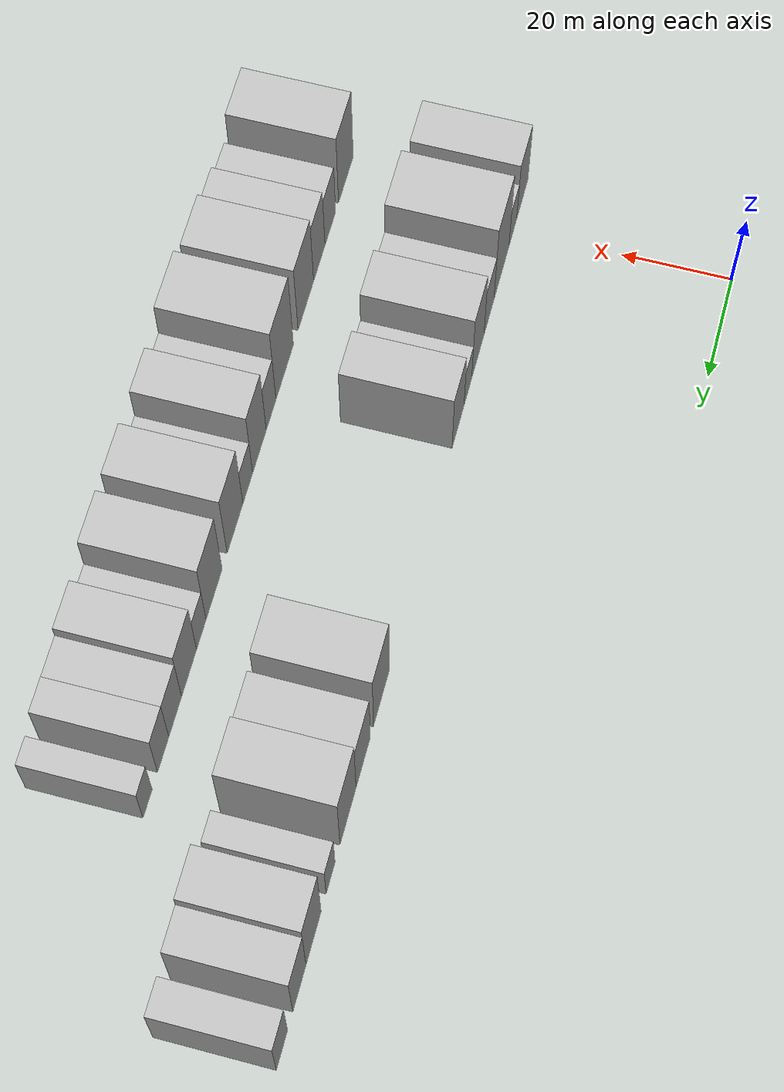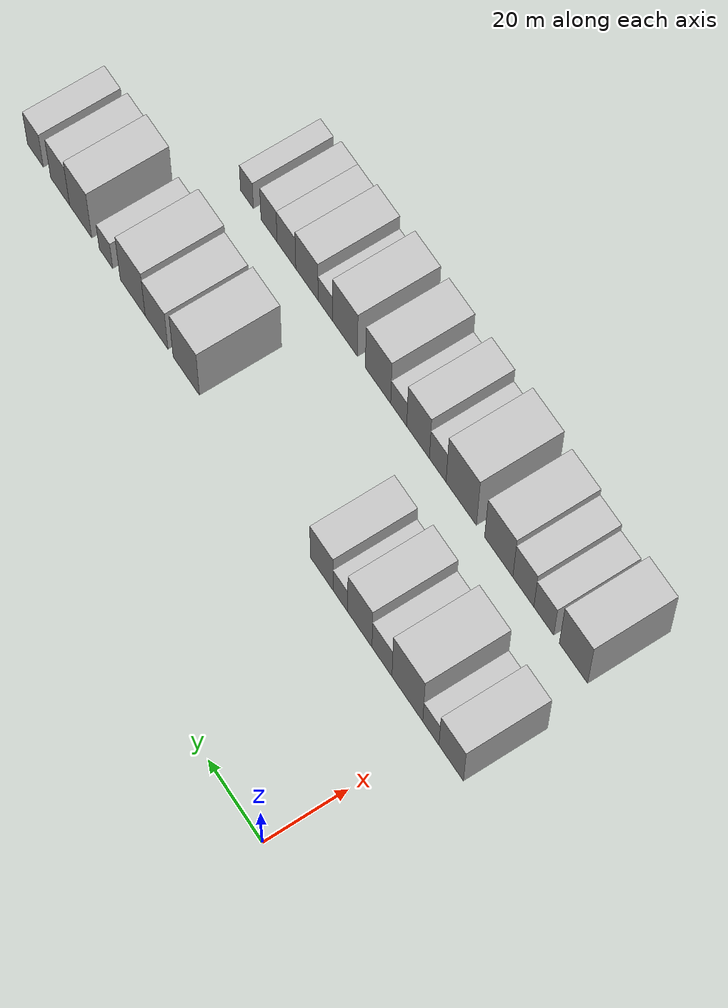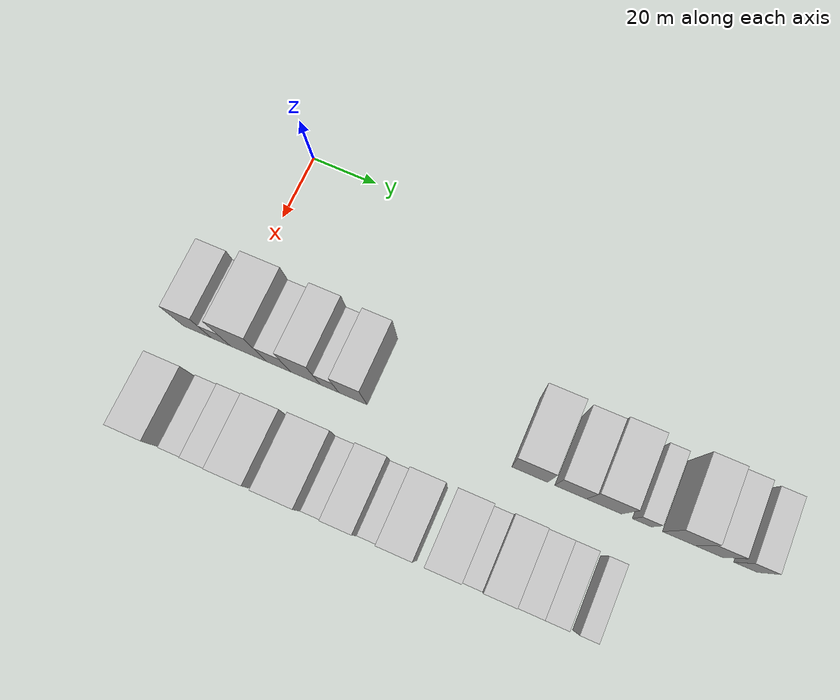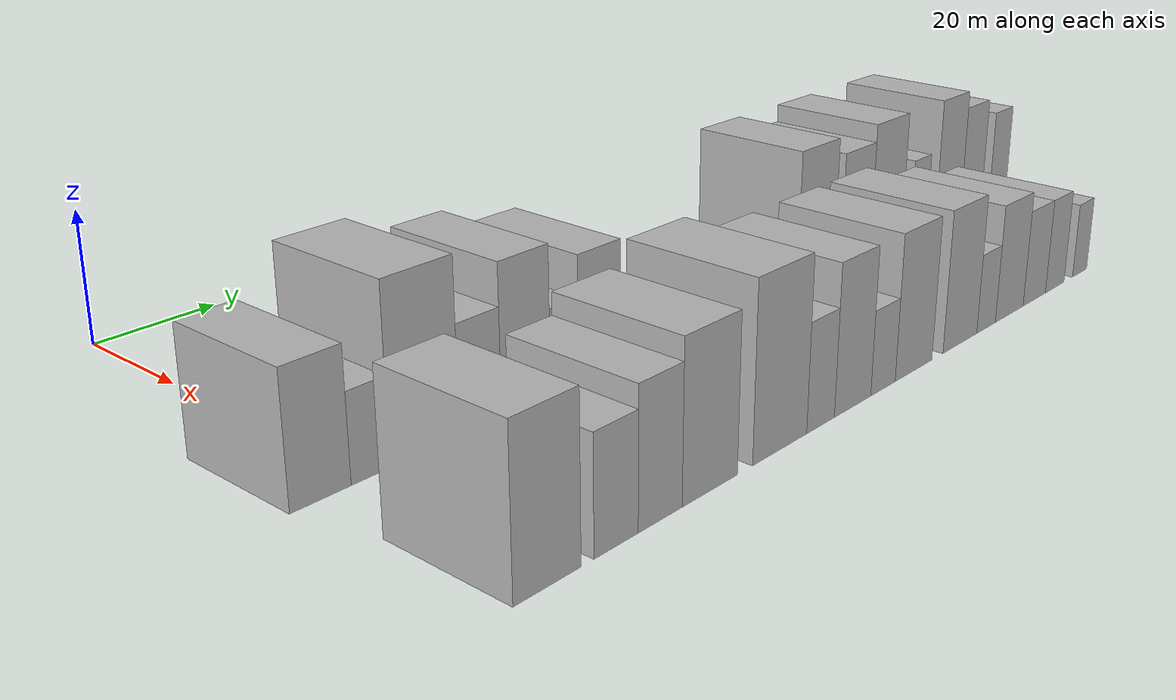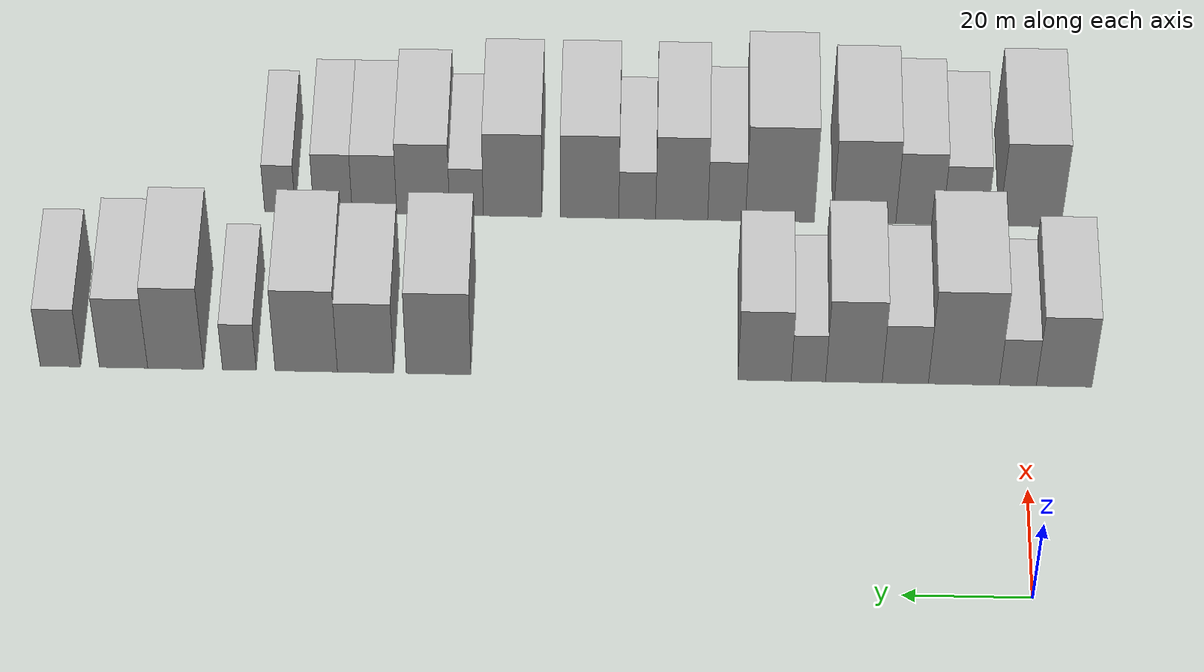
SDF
<sdf version="1.6">
 <world name="default">
  <model name="building_32">
   <static>1</static>
   <pose>50.0000 -6.5407 0 0.000000 0.000000 0.000000</pose>
   <link name="link">
    <pose>0 0 9.00 0 0 0</pose>
    <collision name="collision"><geometry><box><size>20.0000 8.7869 18.0000</size></box></geometry></collision>
    <visual name="visual">
     <cast_shadows>0</cast_shadows>
     <geometry><box><size>20.0000 8.7869 18.0000</size></box></geometry>
     <material>
      <script>
       <uri>model://HANNAS_wall/materials/scripts</uri>
       <uri>model://HANNAS_wall/materials/textures</uri>
       <name>vrc/HANNAS_wall</name>
      </script>
     </material>
    </visual>
   </link>
  </model>
  <model name="building_33">
   <static>1</static>
   <pose>50.0000 0.7738 0 0.000000 0.000000 0.000000</pose>
   <link name="link">
    <pose>0 0 6.00 0 0 0</pose>
    <collision name="collision"><geometry><box><size>20.0000 5.8419 12.0000</size></box></geometry></collision>
    <visual name="visual">
     <cast_shadows>0</cast_shadows>
     <geometry><box><size>20.0000 5.8419 12.0000</size></box></geometry>
     <material>
      <script>
       <uri>model://HANNAS_wall/materials/scripts</uri>
       <uri>model://HANNAS_wall/materials/textures</uri>
       <name>vrc/HANNAS_wall</name>
      </script>
     </material>
    </visual>
   </link>
  </model>
  <model name="building_34">
   <static>1</static>
   <pose>50.0000 9.2958 0 0.000000 0.000000 0.000000</pose>
   <link name="link">
    <pose>0 0 12.00 0 0 0</pose>
    <collision name="collision"><geometry><box><size>20.0000 11.2023 24.0000</size></box></geometry></collision>
    <visual name="visual">
     <cast_shadows>0</cast_shadows>
     <geometry><box><size>20.0000 11.2023 24.0000</size></box></geometry>
     <material>
      <script>
       <uri>model://HANNAS_wall/materials/scripts</uri>
       <uri>model://HANNAS_wall/materials/textures</uri>
       <name>vrc/HANNAS_wall</name>
      </script>
     </material>
    </visual>
   </link>
  </model>
  <model name="building_35">
   <static>1</static>
   <pose>50.0000 18.5480 0 0.000000 0.000000 0.000000</pose>
   <link name="link">
    <pose>0 0 7.50 0 0 0</pose>
    <collision name="collision"><geometry><box><size>20.0000 7.3020 15.0000</size></box></geometry></collision>
    <visual name="visual">
     <cast_shadows>0</cast_shadows>
     <geometry><box><size>20.0000 7.3020 15.0000</size></box></geometry>
     <material>
      <script>
       <uri>model://HANNAS_wall/materials/scripts</uri>
       <uri>model://HANNAS_wall/materials/textures</uri>
       <name>vrc/HANNAS_wall</name>
      </script>
     </material>
    </visual>
   </link>
  </model>
  <model name="building_36">
   <static>1</static>
   <pose>50.0000 26.6706 0 0.000000 0.000000 0.000000</pose>
   <link name="link">
    <pose>0 0 10.50 0 0 0</pose>
    <collision name="collision"><geometry><box><size>20.0000 8.9432 21.0000</size></box></geometry></collision>
    <visual name="visual">
     <cast_shadows>0</cast_shadows>
     <geometry><box><size>20.0000 8.9432 21.0000</size></box></geometry>
     <material>
      <script>
       <uri>model://HANNAS_wall/materials/scripts</uri>
       <uri>model://HANNAS_wall/materials/textures</uri>
       <name>vrc/HANNAS_wall</name>
      </script>
     </material>
    </visual>
   </link>
  </model>
  <model name="building_37">
   <static>1</static>
   <pose>50.0000 33.8603 0 0.000000 0.000000 0.000000</pose>
   <link name="link">
    <pose>0 0 6.00 0 0 0</pose>
    <collision name="collision"><geometry><box><size>20.0000 5.4363 12.0000</size></box></geometry></collision>
    <visual name="visual">
     <cast_shadows>0</cast_shadows>
     <geometry><box><size>20.0000 5.4363 12.0000</size></box></geometry>
     <material>
      <script>
       <uri>model://HANNAS_wall/materials/scripts</uri>
       <uri>model://HANNAS_wall/materials/textures</uri>
       <name>vrc/HANNAS_wall</name>
      </script>
     </material>
    </visual>
   </link>
  </model>
  <model name="building_38">
   <static>1</static>
   <pose>50.0000 40.8012 0 0.000000 0.000000 0.000000</pose>
   <link name="link">
    <pose>0 0 9.00 0 0 0</pose>
    <collision name="collision"><geometry><box><size>20.0000 8.4455 18.0000</size></box></geometry></collision>
    <visual name="visual">
     <cast_shadows>0</cast_shadows>
     <geometry><box><size>20.0000 8.4455 18.0000</size></box></geometry>
     <material>
      <script>
       <uri>model://HANNAS_wall/materials/scripts</uri>
       <uri>model://HANNAS_wall/materials/textures</uri>
       <name>vrc/HANNAS_wall</name>
      </script>
     </material>
    </visual>
   </link>
  </model>
  <model name="building_39">
   <static>1</static>
   <pose>50.0000 92.3838 0 0.000000 0.000000 0.000000</pose>
   <link name="link">
    <pose>0 0 10.50 0 0 0</pose>
    <collision name="collision"><geometry><box><size>20.0000 10.2399 21.0000</size></box></geometry></collision>
    <visual name="visual">
     <cast_shadows>0</cast_shadows>
     <geometry><box><size>20.0000 10.2399 21.0000</size></box></geometry>
     <material>
      <script>
       <uri>model://HANNAS_wall/materials/scripts</uri>
       <uri>model://HANNAS_wall/materials/textures</uri>
       <name>vrc/HANNAS_wall</name>
      </script>
     </material>
    </visual>
   </link>
  </model>
  <model name="building_40">
   <static>1</static>
   <pose>50.0000 103.9644 0 0.000000 0.000000 0.000000</pose>
   <link name="link">
    <pose>0 0 9.00 0 0 0</pose>
    <collision name="collision"><geometry><box><size>20.0000 8.9212 18.0000</size></box></geometry></collision>
    <visual name="visual">
     <cast_shadows>0</cast_shadows>
     <geometry><box><size>20.0000 8.9212 18.0000</size></box></geometry>
     <material>
      <script>
       <uri>model://HANNAS_wall/materials/scripts</uri>
       <uri>model://HANNAS_wall/materials/textures</uri>
       <name>vrc/HANNAS_wall</name>
      </script>
     </material>
    </visual>
   </link>
  </model>
  <model name="building_41">
   <static>1</static>
   <pose>50.0000 113.3632 0 0.000000 0.000000 0.000000</pose>
   <link name="link">
    <pose>0 0 10.50 0 0 0</pose>
    <collision name="collision"><geometry><box><size>20.0000 9.8763 21.0000</size></box></geometry></collision>
    <visual name="visual">
     <cast_shadows>0</cast_shadows>
     <geometry><box><size>20.0000 9.8763 21.0000</size></box></geometry>
     <material>
      <script>
       <uri>model://HANNAS_wall/materials/scripts</uri>
       <uri>model://HANNAS_wall/materials/textures</uri>
       <name>vrc/HANNAS_wall</name>
      </script>
     </material>
    </visual>
   </link>
  </model>
  <model name="building_42">
   <static>1</static>
   <pose>50.0000 123.9783 0 0.000000 0.000000 0.000000</pose>
   <link name="link">
    <pose>0 0 6.00 0 0 0</pose>
    <collision name="collision"><geometry><box><size>20.0000 5.3540 12.0000</size></box></geometry></collision>
    <visual name="visual">
     <cast_shadows>0</cast_shadows>
     <geometry><box><size>20.0000 5.3540 12.0000</size></box></geometry>
     <material>
      <script>
       <uri>model://HANNAS_wall/materials/scripts</uri>
       <uri>model://HANNAS_wall/materials/textures</uri>
       <name>vrc/HANNAS_wall</name>
      </script>
     </material>
    </visual>
   </link>
  </model>
  <model name="building_43">
   <static>1</static>
   <pose>50.0000 134.0967 0 0.000000 0.000000 0.000000</pose>
   <link name="link">
    <pose>0 0 10.50 0 0 0</pose>
    <collision name="collision"><geometry><box><size>20.0000 8.8829 21.0000</size></box></geometry></collision>
    <visual name="visual">
     <cast_shadows>0</cast_shadows>
     <geometry><box><size>20.0000 8.8829 21.0000</size></box></geometry>
     <material>
      <script>
       <uri>model://HANNAS_wall/materials/scripts</uri>
       <uri>model://HANNAS_wall/materials/textures</uri>
       <name>vrc/HANNAS_wall</name>
      </script>
     </material>
    </visual>
   </link>
  </model>
  <model name="building_44">
   <static>1</static>
   <pose>50.0000 142.3680 0 0.000000 0.000000 0.000000</pose>
   <link name="link">
    <pose>0 0 9.00 0 0 0</pose>
    <collision name="collision"><geometry><box><size>20.0000 7.6595 18.0000</size></box></geometry></collision>
    <visual name="visual">
     <cast_shadows>0</cast_shadows>
     <geometry><box><size>20.0000 7.6595 18.0000</size></box></geometry>
     <material>
      <script>
       <uri>model://HANNAS_wall/materials/scripts</uri>
       <uri>model://HANNAS_wall/materials/textures</uri>
       <name>vrc/HANNAS_wall</name>
      </script>
     </material>
    </visual>
   </link>
  </model>
  <model name="building_45">
   <static>1</static>
   <pose>50.0000 152.4048 0 0.000000 0.000000 0.000000</pose>
   <link name="link">
    <pose>0 0 7.50 0 0 0</pose>
    <collision name="collision"><geometry><box><size>20.0000 6.4142 15.0000</size></box></geometry></collision>
    <visual name="visual">
     <cast_shadows>0</cast_shadows>
     <geometry><box><size>20.0000 6.4142 15.0000</size></box></geometry>
     <material>
      <script>
       <uri>model://HANNAS_wall/materials/scripts</uri>
       <uri>model://HANNAS_wall/materials/textures</uri>
       <name>vrc/HANNAS_wall</name>
      </script>
     </material>
    </visual>
   </link>
  </model>
  <model name="building_86">
   <static>1</static>
   <pose>82.0000 -2.4315 0 0.000000 0.000000 0.000000</pose>
   <link name="link">
    <pose>0 0 10.50 0 0 0</pose>
    <collision name="collision"><geometry><box><size>20.0000 10.0685 21.0000</size></box></geometry></collision>
    <visual name="visual">
     <cast_shadows>0</cast_shadows>
     <geometry><box><size>20.0000 10.0685 21.0000</size></box></geometry>
     <material>
      <script>
       <uri>model://HANNAS_wall/materials/scripts</uri>
       <uri>model://HANNAS_wall/materials/textures</uri>
       <name>vrc/HANNAS_wall</name>
      </script>
     </material>
    </visual>
   </link>
  </model>
  <model name="building_87">
   <static>1</static>
   <pose>82.0000 8.1868 0 0.000000 0.000000 0.000000</pose>
   <link name="link">
    <pose>0 0 7.50 0 0 0</pose>
    <collision name="collision"><geometry><box><size>20.0000 7.1680 15.0000</size></box></geometry></collision>
    <visual name="visual">
     <cast_shadows>0</cast_shadows>
     <geometry><box><size>20.0000 7.1680 15.0000</size></box></geometry>
     <material>
      <script>
       <uri>model://HANNAS_wall/materials/scripts</uri>
       <uri>model://HANNAS_wall/materials/textures</uri>
       <name>vrc/HANNAS_wall</name>
      </script>
     </material>
    </visual>
   </link>
  </model>
  <model name="building_88">
   <static>1</static>
   <pose>82.0000 15.5689 0 0.000000 0.000000 0.000000</pose>
   <link name="link">
    <pose>0 0 9.00 0 0 0</pose>
    <collision name="collision"><geometry><box><size>20.0000 7.5963 18.0000</size></box></geometry></collision>
    <visual name="visual">
     <cast_shadows>0</cast_shadows>
     <geometry><box><size>20.0000 7.5963 18.0000</size></box></geometry>
     <material>
      <script>
       <uri>model://HANNAS_wall/materials/scripts</uri>
       <uri>model://HANNAS_wall/materials/textures</uri>
       <name>vrc/HANNAS_wall</name>
      </script>
     </material>
    </visual>
   </link>
  </model>
  <model name="building_89">
   <static>1</static>
   <pose>82.0000 24.4899 0 0.000000 0.000000 0.000000</pose>
   <link name="link">
    <pose>0 0 10.50 0 0 0</pose>
    <collision name="collision"><geometry><box><size>20.0000 10.2457 21.0000</size></box></geometry></collision>
    <visual name="visual">
     <cast_shadows>0</cast_shadows>
     <geometry><box><size>20.0000 10.2457 21.0000</size></box></geometry>
     <material>
      <script>
       <uri>model://HANNAS_wall/materials/scripts</uri>
       <uri>model://HANNAS_wall/materials/textures</uri>
       <name>vrc/HANNAS_wall</name>
      </script>
     </material>
    </visual>
   </link>
  </model>
  <model name="building_90">
   <static>1</static>
   <pose>82.0000 38.2069 0 0.000000 0.000000 0.000000</pose>
   <link name="link">
    <pose>0 0 12.00 0 0 0</pose>
    <collision name="collision"><geometry><box><size>20.0000 11.1884 24.0000</size></box></geometry></collision>
    <visual name="visual">
     <cast_shadows>0</cast_shadows>
     <geometry><box><size>20.0000 11.1884 24.0000</size></box></geometry>
     <material>
      <script>
       <uri>model://HANNAS_wall/materials/scripts</uri>
       <uri>model://HANNAS_wall/materials/textures</uri>
       <name>vrc/HANNAS_wall</name>
      </script>
     </material>
    </visual>
   </link>
  </model>
  <model name="building_91">
   <static>1</static>
   <pose>82.0000 46.8741 0 0.000000 0.000000 0.000000</pose>
   <link name="link">
    <pose>0 0 7.50 0 0 0</pose>
    <collision name="collision"><geometry><box><size>20.0000 6.1459 15.0000</size></box></geometry></collision>
    <visual name="visual">
     <cast_shadows>0</cast_shadows>
     <geometry><box><size>20.0000 6.1459 15.0000</size></box></geometry>
     <material>
      <script>
       <uri>model://HANNAS_wall/materials/scripts</uri>
       <uri>model://HANNAS_wall/materials/textures</uri>
       <name>vrc/HANNAS_wall</name>
      </script>
     </material>
    </visual>
   </link>
  </model>
  <model name="building_92">
   <static>1</static>
   <pose>82.0000 54.1813 0 0.000000 0.000000 0.000000</pose>
   <link name="link">
    <pose>0 0 10.50 0 0 0</pose>
    <collision name="collision"><geometry><box><size>20.0000 8.4685 21.0000</size></box></geometry></collision>
    <visual name="visual">
     <cast_shadows>0</cast_shadows>
     <geometry><box><size>20.0000 8.4685 21.0000</size></box></geometry>
     <material>
      <script>
       <uri>model://HANNAS_wall/materials/scripts</uri>
       <uri>model://HANNAS_wall/materials/textures</uri>
       <name>vrc/HANNAS_wall</name>
      </script>
     </material>
    </visual>
   </link>
  </model>
  <model name="building_93">
   <static>1</static>
   <pose>82.0000 61.4146 0 0.000000 0.000000 0.000000</pose>
   <link name="link">
    <pose>0 0 6.00 0 0 0</pose>
    <collision name="collision"><geometry><box><size>20.0000 5.9982 12.0000</size></box></geometry></collision>
    <visual name="visual">
     <cast_shadows>0</cast_shadows>
     <geometry><box><size>20.0000 5.9982 12.0000</size></box></geometry>
     <material>
      <script>
       <uri>model://HANNAS_wall/materials/scripts</uri>
       <uri>model://HANNAS_wall/materials/textures</uri>
       <name>vrc/HANNAS_wall</name>
      </script>
     </material>
    </visual>
   </link>
  </model>
  <model name="building_94">
   <static>1</static>
   <pose>82.0000 69.1726 0 0.000000 0.000000 0.000000</pose>
   <link name="link">
    <pose>0 0 10.50 0 0 0</pose>
    <collision name="collision"><geometry><box><size>20.0000 9.5178 21.0000</size></box></geometry></collision>
    <visual name="visual">
     <cast_shadows>0</cast_shadows>
     <geometry><box><size>20.0000 9.5178 21.0000</size></box></geometry>
     <material>
      <script>
       <uri>model://HANNAS_wall/materials/scripts</uri>
       <uri>model://HANNAS_wall/materials/textures</uri>
       <name>vrc/HANNAS_wall</name>
      </script>
     </material>
    </visual>
   </link>
  </model>
  <model name="building_95">
   <static>1</static>
   <pose>82.0000 81.6844 0 0.000000 0.000000 0.000000</pose>
   <link name="link">
    <pose>0 0 10.50 0 0 0</pose>
    <collision name="collision"><geometry><box><size>20.0000 9.5059 21.0000</size></box></geometry></collision>
    <visual name="visual">
     <cast_shadows>0</cast_shadows>
     <geometry><box><size>20.0000 9.5059 21.0000</size></box></geometry>
     <material>
      <script>
       <uri>model://HANNAS_wall/materials/scripts</uri>
       <uri>model://HANNAS_wall/materials/textures</uri>
       <name>vrc/HANNAS_wall</name>
      </script>
     </material>
    </visual>
   </link>
  </model>
  <model name="building_96">
   <static>1</static>
   <pose>82.0000 89.2003 0 0.000000 0.000000 0.000000</pose>
   <link name="link">
    <pose>0 0 6.00 0 0 0</pose>
    <collision name="collision"><geometry><box><size>20.0000 5.5259 12.0000</size></box></geometry></collision>
    <visual name="visual">
     <cast_shadows>0</cast_shadows>
     <geometry><box><size>20.0000 5.5259 12.0000</size></box></geometry>
     <material>
      <script>
       <uri>model://HANNAS_wall/materials/scripts</uri>
       <uri>model://HANNAS_wall/materials/textures</uri>
       <name>vrc/HANNAS_wall</name>
      </script>
     </material>
    </visual>
   </link>
  </model>
  <model name="building_97">
   <static>1</static>
   <pose>82.0000 96.2660 0 0.000000 0.000000 0.000000</pose>
   <link name="link">
    <pose>0 0 9.00 0 0 0</pose>
    <collision name="collision"><geometry><box><size>20.0000 8.6054 18.0000</size></box></geometry></collision>
    <visual name="visual">
     <cast_shadows>0</cast_shadows>
     <geometry><box><size>20.0000 8.6054 18.0000</size></box></geometry>
     <material>
      <script>
       <uri>model://HANNAS_wall/materials/scripts</uri>
       <uri>model://HANNAS_wall/materials/textures</uri>
       <name>vrc/HANNAS_wall</name>
      </script>
     </material>
    </visual>
   </link>
  </model>
  <model name="building_98">
   <static>1</static>
   <pose>82.0000 104.1942 0 0.000000 0.000000 0.000000</pose>
   <link name="link">
    <pose>0 0 7.50 0 0 0</pose>
    <collision name="collision"><geometry><box><size>20.0000 7.2509 15.0000</size></box></geometry></collision>
    <visual name="visual">
     <cast_shadows>0</cast_shadows>
     <geometry><box><size>20.0000 7.2509 15.0000</size></box></geometry>
     <material>
      <script>
       <uri>model://HANNAS_wall/materials/scripts</uri>
       <uri>model://HANNAS_wall/materials/textures</uri>
       <name>vrc/HANNAS_wall</name>
      </script>
     </material>
    </visual>
   </link>
  </model>
  <model name="building_99">
   <static>1</static>
   <pose>82.0000 110.9539 0 0.000000 0.000000 0.000000</pose>
   <link name="link">
    <pose>0 0 7.50 0 0 0</pose>
    <collision name="collision"><geometry><box><size>20.0000 6.2685 15.0000</size></box></geometry></collision>
    <visual name="visual">
     <cast_shadows>0</cast_shadows>
     <geometry><box><size>20.0000 6.2685 15.0000</size></box></geometry>
     <material>
      <script>
       <uri>model://HANNAS_wall/materials/scripts</uri>
       <uri>model://HANNAS_wall/materials/textures</uri>
       <name>vrc/HANNAS_wall</name>
      </script>
     </material>
    </visual>
   </link>
  </model>
  <model name="building_100">
   <static>1</static>
   <pose>82.0000 119.5914 0 0.000000 0.000000 0.000000</pose>
   <link name="link">
    <pose>0 0 6.00 0 0 0</pose>
    <collision name="collision"><geometry><box><size>20.0000 5.0067 12.0000</size></box></geometry></collision>
    <visual name="visual">
     <cast_shadows>0</cast_shadows>
     <geometry><box><size>20.0000 5.0067 12.0000</size></box></geometry>
     <material>
      <script>
       <uri>model://HANNAS_wall/materials/scripts</uri>
       <uri>model://HANNAS_wall/materials/textures</uri>
       <name>vrc/HANNAS_wall</name>
      </script>
     </material>
    </visual>
   </link>
  </model>
 </world>
</sdf>
